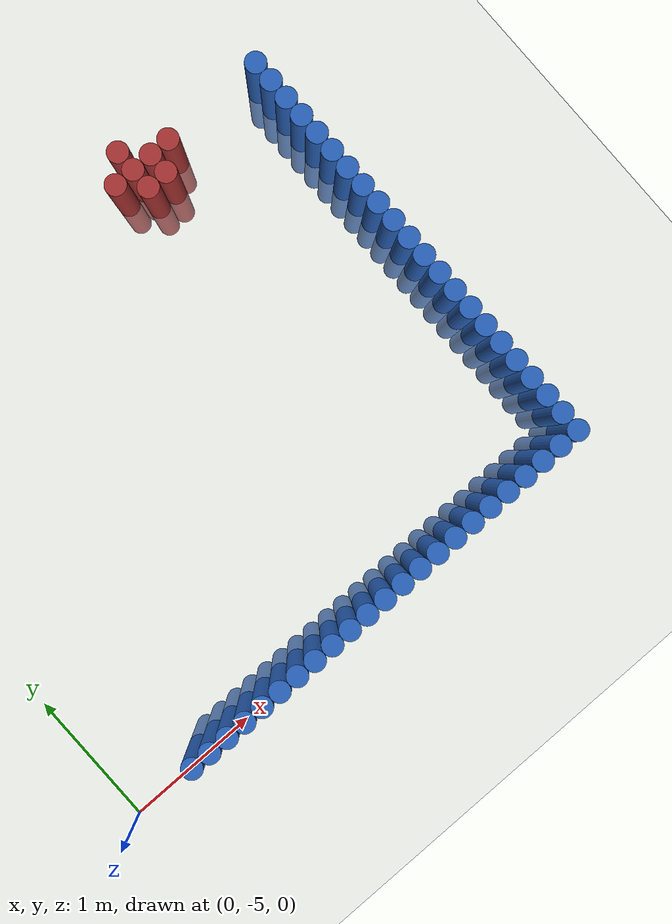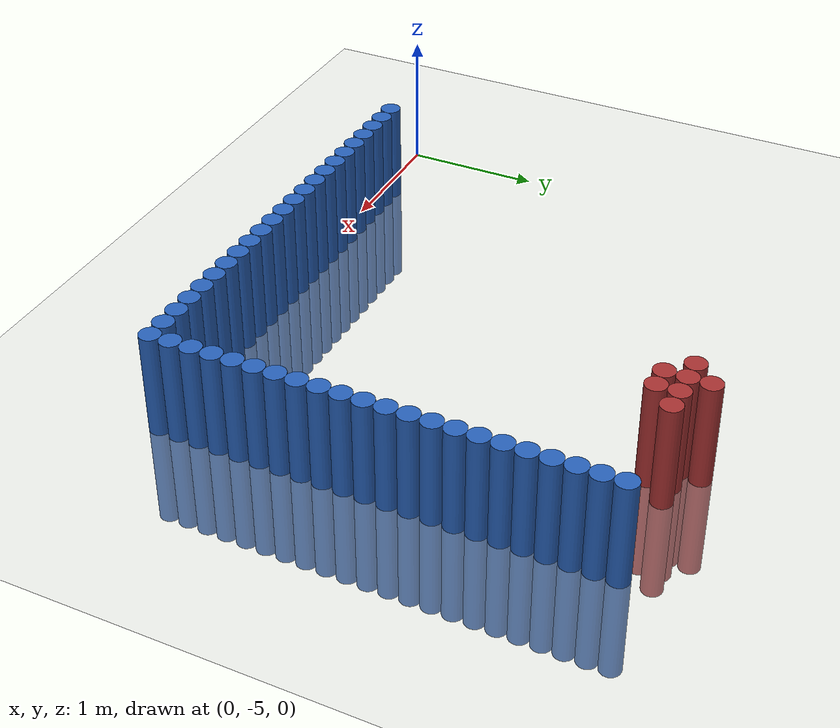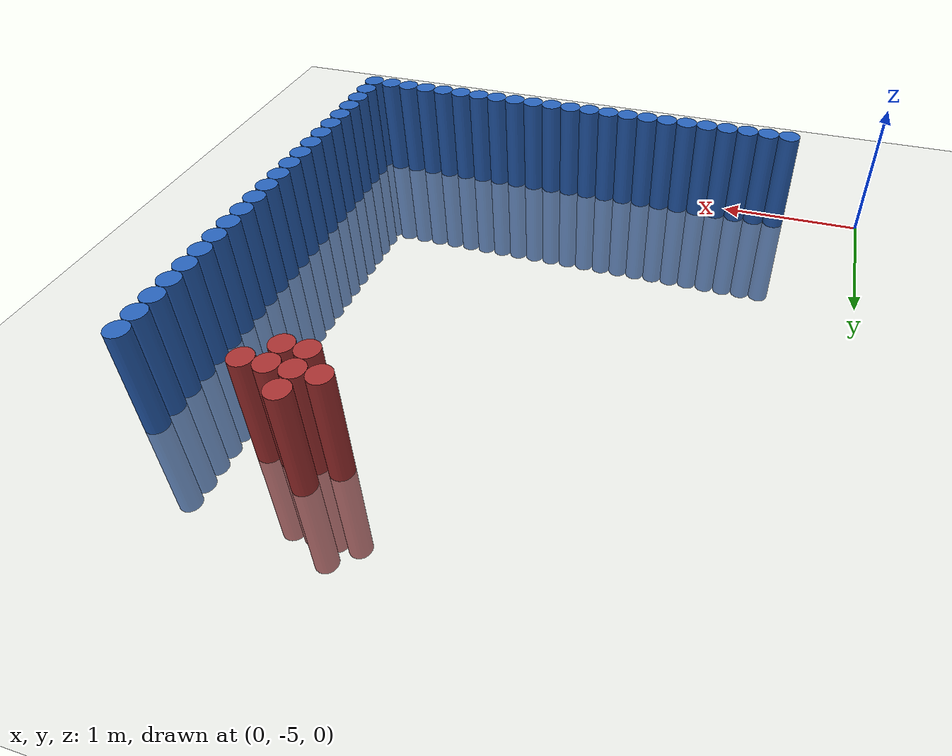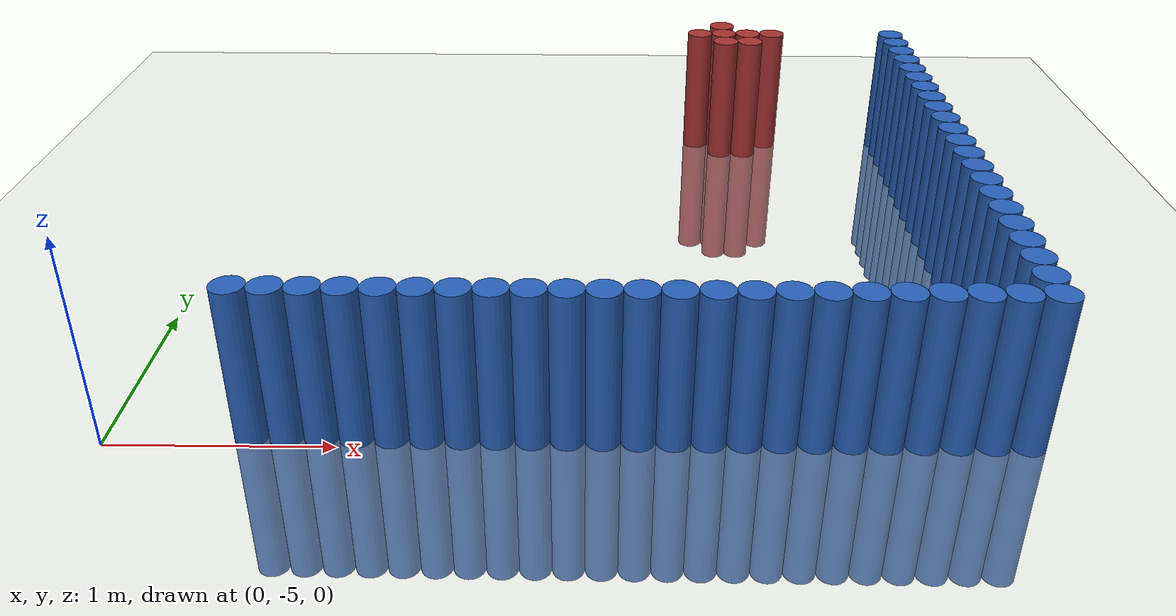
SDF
<sdf version="1.6">
 <world name="default">
  <model name="ground_plane">
   <static>1</static>
   <link name="link">
    <collision name="collision">
     <geometry><plane><normal>0 0 1</normal><size>100 100</size></plane></geometry>
     <surface><friction><ode><mu>100</mu><mu2>50</mu2></ode></friction></surface>
    </collision>
    <visual name="visual">
     <cast_shadows>0</cast_shadows>
     <geometry><plane><normal>0 0 1</normal><size>100 100</size></plane></geometry>
     <material>
      <script><uri>file://media/materials/scripts/gazebo.material</uri><name>Gazebo/Grey</name></script>
     </material>
    </visual>
   </link>
  </model>
  <model name="unit_cylinder_0">
   <static>1</static>
   <pose>3.925000 -4.925000 0.000000 0.000000 0.000000 0.000000</pose>
   <link name="link">
    <inertial>
     <mass>1</mass>
     <inertia><ixx>0.145833</ixx><ixy>0</ixy><ixz>0</ixz><iyy>0.145833</iyy><iyz>0</iyz><izz>0.125</izz></inertia>
    </inertial>
    <collision name="collision">
     <geometry><cylinder><radius>0.075000</radius><length>1.5</length></cylinder></geometry>
    </collision>
    <visual name="visual">
     <geometry><cylinder><radius>0.075000</radius><length>1.5</length></cylinder></geometry>
     <material>
      <ambient>0.152000 0.379000 0.720000 1</ambient>
      <diffuse>0.152000 0.379000 0.720000 1</diffuse>
     </material>
     <material>
      <script><name>Gazebo/Grey</name><uri>file://media/materials/scripts/gazebo.material</uri></script>
     </material>
    </visual>
   </link>
  </model>
  <model name="unit_cylinder_1">
   <static>1</static>
   <pose>3.775000 -4.925000 0.000000 0.000000 0.000000 0.000000</pose>
   <link name="link">
    <inertial>
     <mass>1</mass>
     <inertia><ixx>0.145833</ixx><ixy>0</ixy><ixz>0</ixz><iyy>0.145833</iyy><iyz>0</iyz><izz>0.125</izz></inertia>
    </inertial>
    <collision name="collision">
     <geometry><cylinder><radius>0.075000</radius><length>1.5</length></cylinder></geometry>
    </collision>
    <visual name="visual">
     <geometry><cylinder><radius>0.075000</radius><length>1.5</length></cylinder></geometry>
     <material>
      <ambient>0.152000 0.379000 0.720000 1</ambient>
      <diffuse>0.152000 0.379000 0.720000 1</diffuse>
     </material>
     <material>
      <script><name>Gazebo/Grey</name><uri>file://media/materials/scripts/gazebo.material</uri></script>
     </material>
    </visual>
   </link>
  </model>
  <model name="unit_cylinder_2">
   <static>1</static>
   <pose>3.625000 -4.925000 0.000000 0.000000 0.000000 0.000000</pose>
   <link name="link">
    <inertial>
     <mass>1</mass>
     <inertia><ixx>0.145833</ixx><ixy>0</ixy><ixz>0</ixz><iyy>0.145833</iyy><iyz>0</iyz><izz>0.125</izz></inertia>
    </inertial>
    <collision name="collision">
     <geometry><cylinder><radius>0.075000</radius><length>1.5</length></cylinder></geometry>
    </collision>
    <visual name="visual">
     <geometry><cylinder><radius>0.075000</radius><length>1.5</length></cylinder></geometry>
     <material>
      <ambient>0.152000 0.379000 0.720000 1</ambient>
      <diffuse>0.152000 0.379000 0.720000 1</diffuse>
     </material>
     <material>
      <script><name>Gazebo/Grey</name><uri>file://media/materials/scripts/gazebo.material</uri></script>
     </material>
    </visual>
   </link>
  </model>
  <model name="unit_cylinder_3">
   <static>1</static>
   <pose>3.475000 -4.925000 0.000000 0.000000 0.000000 0.000000</pose>
   <link name="link">
    <inertial>
     <mass>1</mass>
     <inertia><ixx>0.145833</ixx><ixy>0</ixy><ixz>0</ixz><iyy>0.145833</iyy><iyz>0</iyz><izz>0.125</izz></inertia>
    </inertial>
    <collision name="collision">
     <geometry><cylinder><radius>0.075000</radius><length>1.5</length></cylinder></geometry>
    </collision>
    <visual name="visual">
     <geometry><cylinder><radius>0.075000</radius><length>1.5</length></cylinder></geometry>
     <material>
      <ambient>0.152000 0.379000 0.720000 1</ambient>
      <diffuse>0.152000 0.379000 0.720000 1</diffuse>
     </material>
     <material>
      <script><name>Gazebo/Grey</name><uri>file://media/materials/scripts/gazebo.material</uri></script>
     </material>
    </visual>
   </link>
  </model>
  <model name="unit_cylinder_4">
   <static>1</static>
   <pose>3.325000 -4.925000 0.000000 0.000000 0.000000 0.000000</pose>
   <link name="link">
    <inertial>
     <mass>1</mass>
     <inertia><ixx>0.145833</ixx><ixy>0</ixy><ixz>0</ixz><iyy>0.145833</iyy><iyz>0</iyz><izz>0.125</izz></inertia>
    </inertial>
    <collision name="collision">
     <geometry><cylinder><radius>0.075000</radius><length>1.5</length></cylinder></geometry>
    </collision>
    <visual name="visual">
     <geometry><cylinder><radius>0.075000</radius><length>1.5</length></cylinder></geometry>
     <material>
      <ambient>0.152000 0.379000 0.720000 1</ambient>
      <diffuse>0.152000 0.379000 0.720000 1</diffuse>
     </material>
     <material>
      <script><name>Gazebo/Grey</name><uri>file://media/materials/scripts/gazebo.material</uri></script>
     </material>
    </visual>
   </link>
  </model>
  <model name="unit_cylinder_5">
   <static>1</static>
   <pose>3.175000 -4.925000 0.000000 0.000000 0.000000 0.000000</pose>
   <link name="link">
    <inertial>
     <mass>1</mass>
     <inertia><ixx>0.145833</ixx><ixy>0</ixy><ixz>0</ixz><iyy>0.145833</iyy><iyz>0</iyz><izz>0.125</izz></inertia>
    </inertial>
    <collision name="collision">
     <geometry><cylinder><radius>0.075000</radius><length>1.5</length></cylinder></geometry>
    </collision>
    <visual name="visual">
     <geometry><cylinder><radius>0.075000</radius><length>1.5</length></cylinder></geometry>
     <material>
      <ambient>0.152000 0.379000 0.720000 1</ambient>
      <diffuse>0.152000 0.379000 0.720000 1</diffuse>
     </material>
     <material>
      <script><name>Gazebo/Grey</name><uri>file://media/materials/scripts/gazebo.material</uri></script>
     </material>
    </visual>
   </link>
  </model>
  <model name="unit_cylinder_6">
   <static>1</static>
   <pose>3.025000 -4.925000 0.000000 0.000000 0.000000 0.000000</pose>
   <link name="link">
    <inertial>
     <mass>1</mass>
     <inertia><ixx>0.145833</ixx><ixy>0</ixy><ixz>0</ixz><iyy>0.145833</iyy><iyz>0</iyz><izz>0.125</izz></inertia>
    </inertial>
    <collision name="collision">
     <geometry><cylinder><radius>0.075000</radius><length>1.5</length></cylinder></geometry>
    </collision>
    <visual name="visual">
     <geometry><cylinder><radius>0.075000</radius><length>1.5</length></cylinder></geometry>
     <material>
      <ambient>0.152000 0.379000 0.720000 1</ambient>
      <diffuse>0.152000 0.379000 0.720000 1</diffuse>
     </material>
     <material>
      <script><name>Gazebo/Grey</name><uri>file://media/materials/scripts/gazebo.material</uri></script>
     </material>
    </visual>
   </link>
  </model>
  <model name="unit_cylinder_7">
   <static>1</static>
   <pose>2.875000 -4.925000 0.000000 0.000000 0.000000 0.000000</pose>
   <link name="link">
    <inertial>
     <mass>1</mass>
     <inertia><ixx>0.145833</ixx><ixy>0</ixy><ixz>0</ixz><iyy>0.145833</iyy><iyz>0</iyz><izz>0.125</izz></inertia>
    </inertial>
    <collision name="collision">
     <geometry><cylinder><radius>0.075000</radius><length>1.5</length></cylinder></geometry>
    </collision>
    <visual name="visual">
     <geometry><cylinder><radius>0.075000</radius><length>1.5</length></cylinder></geometry>
     <material>
      <ambient>0.152000 0.379000 0.720000 1</ambient>
      <diffuse>0.152000 0.379000 0.720000 1</diffuse>
     </material>
     <material>
      <script><name>Gazebo/Grey</name><uri>file://media/materials/scripts/gazebo.material</uri></script>
     </material>
    </visual>
   </link>
  </model>
  <model name="unit_cylinder_8">
   <static>1</static>
   <pose>2.725000 -4.925000 0.000000 0.000000 0.000000 0.000000</pose>
   <link name="link">
    <inertial>
     <mass>1</mass>
     <inertia><ixx>0.145833</ixx><ixy>0</ixy><ixz>0</ixz><iyy>0.145833</iyy><iyz>0</iyz><izz>0.125</izz></inertia>
    </inertial>
    <collision name="collision">
     <geometry><cylinder><radius>0.075000</radius><length>1.5</length></cylinder></geometry>
    </collision>
    <visual name="visual">
     <geometry><cylinder><radius>0.075000</radius><length>1.5</length></cylinder></geometry>
     <material>
      <ambient>0.152000 0.379000 0.720000 1</ambient>
      <diffuse>0.152000 0.379000 0.720000 1</diffuse>
     </material>
     <material>
      <script><name>Gazebo/Grey</name><uri>file://media/materials/scripts/gazebo.material</uri></script>
     </material>
    </visual>
   </link>
  </model>
  <model name="unit_cylinder_9">
   <static>1</static>
   <pose>2.575000 -4.925000 0.000000 0.000000 0.000000 0.000000</pose>
   <link name="link">
    <inertial>
     <mass>1</mass>
     <inertia><ixx>0.145833</ixx><ixy>0</ixy><ixz>0</ixz><iyy>0.145833</iyy><iyz>0</iyz><izz>0.125</izz></inertia>
    </inertial>
    <collision name="collision">
     <geometry><cylinder><radius>0.075000</radius><length>1.5</length></cylinder></geometry>
    </collision>
    <visual name="visual">
     <geometry><cylinder><radius>0.075000</radius><length>1.5</length></cylinder></geometry>
     <material>
      <ambient>0.152000 0.379000 0.720000 1</ambient>
      <diffuse>0.152000 0.379000 0.720000 1</diffuse>
     </material>
     <material>
      <script><name>Gazebo/Grey</name><uri>file://media/materials/scripts/gazebo.material</uri></script>
     </material>
    </visual>
   </link>
  </model>
  <model name="unit_cylinder_10">
   <static>1</static>
   <pose>2.425000 -4.925000 0.000000 0.000000 0.000000 0.000000</pose>
   <link name="link">
    <inertial>
     <mass>1</mass>
     <inertia><ixx>0.145833</ixx><ixy>0</ixy><ixz>0</ixz><iyy>0.145833</iyy><iyz>0</iyz><izz>0.125</izz></inertia>
    </inertial>
    <collision name="collision">
     <geometry><cylinder><radius>0.075000</radius><length>1.5</length></cylinder></geometry>
    </collision>
    <visual name="visual">
     <geometry><cylinder><radius>0.075000</radius><length>1.5</length></cylinder></geometry>
     <material>
      <ambient>0.152000 0.379000 0.720000 1</ambient>
      <diffuse>0.152000 0.379000 0.720000 1</diffuse>
     </material>
     <material>
      <script><name>Gazebo/Grey</name><uri>file://media/materials/scripts/gazebo.material</uri></script>
     </material>
    </visual>
   </link>
  </model>
  <model name="unit_cylinder_11">
   <static>1</static>
   <pose>2.275000 -4.925000 0.000000 0.000000 0.000000 0.000000</pose>
   <link name="link">
    <inertial>
     <mass>1</mass>
     <inertia><ixx>0.145833</ixx><ixy>0</ixy><ixz>0</ixz><iyy>0.145833</iyy><iyz>0</iyz><izz>0.125</izz></inertia>
    </inertial>
    <collision name="collision">
     <geometry><cylinder><radius>0.075000</radius><length>1.5</length></cylinder></geometry>
    </collision>
    <visual name="visual">
     <geometry><cylinder><radius>0.075000</radius><length>1.5</length></cylinder></geometry>
     <material>
      <ambient>0.152000 0.379000 0.720000 1</ambient>
      <diffuse>0.152000 0.379000 0.720000 1</diffuse>
     </material>
     <material>
      <script><name>Gazebo/Grey</name><uri>file://media/materials/scripts/gazebo.material</uri></script>
     </material>
    </visual>
   </link>
  </model>
  <model name="unit_cylinder_12">
   <static>1</static>
   <pose>2.125000 -4.925000 0.000000 0.000000 0.000000 0.000000</pose>
   <link name="link">
    <inertial>
     <mass>1</mass>
     <inertia><ixx>0.145833</ixx><ixy>0</ixy><ixz>0</ixz><iyy>0.145833</iyy><iyz>0</iyz><izz>0.125</izz></inertia>
    </inertial>
    <collision name="collision">
     <geometry><cylinder><radius>0.075000</radius><length>1.5</length></cylinder></geometry>
    </collision>
    <visual name="visual">
     <geometry><cylinder><radius>0.075000</radius><length>1.5</length></cylinder></geometry>
     <material>
      <ambient>0.152000 0.379000 0.720000 1</ambient>
      <diffuse>0.152000 0.379000 0.720000 1</diffuse>
     </material>
     <material>
      <script><name>Gazebo/Grey</name><uri>file://media/materials/scripts/gazebo.material</uri></script>
     </material>
    </visual>
   </link>
  </model>
  <model name="unit_cylinder_13">
   <static>1</static>
   <pose>1.975000 -4.925000 0.000000 0.000000 0.000000 0.000000</pose>
   <link name="link">
    <inertial>
     <mass>1</mass>
     <inertia><ixx>0.145833</ixx><ixy>0</ixy><ixz>0</ixz><iyy>0.145833</iyy><iyz>0</iyz><izz>0.125</izz></inertia>
    </inertial>
    <collision name="collision">
     <geometry><cylinder><radius>0.075000</radius><length>1.5</length></cylinder></geometry>
    </collision>
    <visual name="visual">
     <geometry><cylinder><radius>0.075000</radius><length>1.5</length></cylinder></geometry>
     <material>
      <ambient>0.152000 0.379000 0.720000 1</ambient>
      <diffuse>0.152000 0.379000 0.720000 1</diffuse>
     </material>
     <material>
      <script><name>Gazebo/Grey</name><uri>file://media/materials/scripts/gazebo.material</uri></script>
     </material>
    </visual>
   </link>
  </model>
  <model name="unit_cylinder_14">
   <static>1</static>
   <pose>1.825000 -4.925000 0.000000 0.000000 0.000000 0.000000</pose>
   <link name="link">
    <inertial>
     <mass>1</mass>
     <inertia><ixx>0.145833</ixx><ixy>0</ixy><ixz>0</ixz><iyy>0.145833</iyy><iyz>0</iyz><izz>0.125</izz></inertia>
    </inertial>
    <collision name="collision">
     <geometry><cylinder><radius>0.075000</radius><length>1.5</length></cylinder></geometry>
    </collision>
    <visual name="visual">
     <geometry><cylinder><radius>0.075000</radius><length>1.5</length></cylinder></geometry>
     <material>
      <ambient>0.152000 0.379000 0.720000 1</ambient>
      <diffuse>0.152000 0.379000 0.720000 1</diffuse>
     </material>
     <material>
      <script><name>Gazebo/Grey</name><uri>file://media/materials/scripts/gazebo.material</uri></script>
     </material>
    </visual>
   </link>
  </model>
  <model name="unit_cylinder_15">
   <static>1</static>
   <pose>1.675000 -4.925000 0.000000 0.000000 0.000000 0.000000</pose>
   <link name="link">
    <inertial>
     <mass>1</mass>
     <inertia><ixx>0.145833</ixx><ixy>0</ixy><ixz>0</ixz><iyy>0.145833</iyy><iyz>0</iyz><izz>0.125</izz></inertia>
    </inertial>
    <collision name="collision">
     <geometry><cylinder><radius>0.075000</radius><length>1.5</length></cylinder></geometry>
    </collision>
    <visual name="visual">
     <geometry><cylinder><radius>0.075000</radius><length>1.5</length></cylinder></geometry>
     <material>
      <ambient>0.152000 0.379000 0.720000 1</ambient>
      <diffuse>0.152000 0.379000 0.720000 1</diffuse>
     </material>
     <material>
      <script><name>Gazebo/Grey</name><uri>file://media/materials/scripts/gazebo.material</uri></script>
     </material>
    </visual>
   </link>
  </model>
  <model name="unit_cylinder_16">
   <static>1</static>
   <pose>1.525000 -4.925000 0.000000 0.000000 0.000000 0.000000</pose>
   <link name="link">
    <inertial>
     <mass>1</mass>
     <inertia><ixx>0.145833</ixx><ixy>0</ixy><ixz>0</ixz><iyy>0.145833</iyy><iyz>0</iyz><izz>0.125</izz></inertia>
    </inertial>
    <collision name="collision">
     <geometry><cylinder><radius>0.075000</radius><length>1.5</length></cylinder></geometry>
    </collision>
    <visual name="visual">
     <geometry><cylinder><radius>0.075000</radius><length>1.5</length></cylinder></geometry>
     <material>
      <ambient>0.152000 0.379000 0.720000 1</ambient>
      <diffuse>0.152000 0.379000 0.720000 1</diffuse>
     </material>
     <material>
      <script><name>Gazebo/Grey</name><uri>file://media/materials/scripts/gazebo.material</uri></script>
     </material>
    </visual>
   </link>
  </model>
  <model name="unit_cylinder_17">
   <static>1</static>
   <pose>1.375000 -4.925000 0.000000 0.000000 0.000000 0.000000</pose>
   <link name="link">
    <inertial>
     <mass>1</mass>
     <inertia><ixx>0.145833</ixx><ixy>0</ixy><ixz>0</ixz><iyy>0.145833</iyy><iyz>0</iyz><izz>0.125</izz></inertia>
    </inertial>
    <collision name="collision">
     <geometry><cylinder><radius>0.075000</radius><length>1.5</length></cylinder></geometry>
    </collision>
    <visual name="visual">
     <geometry><cylinder><radius>0.075000</radius><length>1.5</length></cylinder></geometry>
     <material>
      <ambient>0.152000 0.379000 0.720000 1</ambient>
      <diffuse>0.152000 0.379000 0.720000 1</diffuse>
     </material>
     <material>
      <script><name>Gazebo/Grey</name><uri>file://media/materials/scripts/gazebo.material</uri></script>
     </material>
    </visual>
   </link>
  </model>
  <model name="unit_cylinder_18">
   <static>1</static>
   <pose>1.225000 -4.925000 0.000000 0.000000 0.000000 0.000000</pose>
   <link name="link">
    <inertial>
     <mass>1</mass>
     <inertia><ixx>0.145833</ixx><ixy>0</ixy><ixz>0</ixz><iyy>0.145833</iyy><iyz>0</iyz><izz>0.125</izz></inertia>
    </inertial>
    <collision name="collision">
     <geometry><cylinder><radius>0.075000</radius><length>1.5</length></cylinder></geometry>
    </collision>
    <visual name="visual">
     <geometry><cylinder><radius>0.075000</radius><length>1.5</length></cylinder></geometry>
     <material>
      <ambient>0.152000 0.379000 0.720000 1</ambient>
      <diffuse>0.152000 0.379000 0.720000 1</diffuse>
     </material>
     <material>
      <script><name>Gazebo/Grey</name><uri>file://media/materials/scripts/gazebo.material</uri></script>
     </material>
    </visual>
   </link>
  </model>
  <model name="unit_cylinder_19">
   <static>1</static>
   <pose>1.075000 -4.925000 0.000000 0.000000 0.000000 0.000000</pose>
   <link name="link">
    <inertial>
     <mass>1</mass>
     <inertia><ixx>0.145833</ixx><ixy>0</ixy><ixz>0</ixz><iyy>0.145833</iyy><iyz>0</iyz><izz>0.125</izz></inertia>
    </inertial>
    <collision name="collision">
     <geometry><cylinder><radius>0.075000</radius><length>1.5</length></cylinder></geometry>
    </collision>
    <visual name="visual">
     <geometry><cylinder><radius>0.075000</radius><length>1.5</length></cylinder></geometry>
     <material>
      <ambient>0.152000 0.379000 0.720000 1</ambient>
      <diffuse>0.152000 0.379000 0.720000 1</diffuse>
     </material>
     <material>
      <script><name>Gazebo/Grey</name><uri>file://media/materials/scripts/gazebo.material</uri></script>
     </material>
    </visual>
   </link>
  </model>
  <model name="unit_cylinder_20">
   <static>1</static>
   <pose>0.925000 -4.925000 0.000000 0.000000 0.000000 0.000000</pose>
   <link name="link">
    <inertial>
     <mass>1</mass>
     <inertia><ixx>0.145833</ixx><ixy>0</ixy><ixz>0</ixz><iyy>0.145833</iyy><iyz>0</iyz><izz>0.125</izz></inertia>
    </inertial>
    <collision name="collision">
     <geometry><cylinder><radius>0.075000</radius><length>1.5</length></cylinder></geometry>
    </collision>
    <visual name="visual">
     <geometry><cylinder><radius>0.075000</radius><length>1.5</length></cylinder></geometry>
     <material>
      <ambient>0.152000 0.379000 0.720000 1</ambient>
      <diffuse>0.152000 0.379000 0.720000 1</diffuse>
     </material>
     <material>
      <script><name>Gazebo/Grey</name><uri>file://media/materials/scripts/gazebo.material</uri></script>
     </material>
    </visual>
   </link>
  </model>
  <model name="unit_cylinder_21">
   <static>1</static>
   <pose>0.775000 -4.925000 0.000000 0.000000 0.000000 0.000000</pose>
   <link name="link">
    <inertial>
     <mass>1</mass>
     <inertia><ixx>0.145833</ixx><ixy>0</ixy><ixz>0</ixz><iyy>0.145833</iyy><iyz>0</iyz><izz>0.125</izz></inertia>
    </inertial>
    <collision name="collision">
     <geometry><cylinder><radius>0.075000</radius><length>1.5</length></cylinder></geometry>
    </collision>
    <visual name="visual">
     <geometry><cylinder><radius>0.075000</radius><length>1.5</length></cylinder></geometry>
     <material>
      <ambient>0.152000 0.379000 0.720000 1</ambient>
      <diffuse>0.152000 0.379000 0.720000 1</diffuse>
     </material>
     <material>
      <script><name>Gazebo/Grey</name><uri>file://media/materials/scripts/gazebo.material</uri></script>
     </material>
    </visual>
   </link>
  </model>
  <model name="unit_cylinder_22">
   <static>1</static>
   <pose>0.625000 -4.925000 0.000000 0.000000 0.000000 0.000000</pose>
   <link name="link">
    <inertial>
     <mass>1</mass>
     <inertia><ixx>0.145833</ixx><ixy>0</ixy><ixz>0</ixz><iyy>0.145833</iyy><iyz>0</iyz><izz>0.125</izz></inertia>
    </inertial>
    <collision name="collision">
     <geometry><cylinder><radius>0.075000</radius><length>1.5</length></cylinder></geometry>
    </collision>
    <visual name="visual">
     <geometry><cylinder><radius>0.075000</radius><length>1.5</length></cylinder></geometry>
     <material>
      <ambient>0.152000 0.379000 0.720000 1</ambient>
      <diffuse>0.152000 0.379000 0.720000 1</diffuse>
     </material>
     <material>
      <script><name>Gazebo/Grey</name><uri>file://media/materials/scripts/gazebo.material</uri></script>
     </material>
    </visual>
   </link>
  </model>
  <model name="unit_cylinder_50">
   <static>1</static>
   <pose>3.925000 -4.775000 0.000000 0.000000 0.000000 0.000000</pose>
   <link name="link">
    <inertial>
     <mass>1</mass>
     <inertia><ixx>0.145833</ixx><ixy>0</ixy><ixz>0</ixz><iyy>0.145833</iyy><iyz>0</iyz><izz>0.125</izz></inertia>
    </inertial>
    <collision name="collision">
     <geometry><cylinder><radius>0.075000</radius><length>1.5</length></cylinder></geometry>
    </collision>
    <visual name="visual">
     <geometry><cylinder><radius>0.075000</radius><length>1.5</length></cylinder></geometry>
     <material>
      <ambient>0.152000 0.379000 0.720000 1</ambient>
      <diffuse>0.152000 0.379000 0.720000 1</diffuse>
     </material>
     <material>
      <script><name>Gazebo/Grey</name><uri>file://media/materials/scripts/gazebo.material</uri></script>
     </material>
    </visual>
   </link>
  </model>
  <model name="unit_cylinder_52">
   <static>1</static>
   <pose>3.925000 -4.625000 0.000000 0.000000 0.000000 0.000000</pose>
   <link name="link">
    <inertial>
     <mass>1</mass>
     <inertia><ixx>0.145833</ixx><ixy>0</ixy><ixz>0</ixz><iyy>0.145833</iyy><iyz>0</iyz><izz>0.125</izz></inertia>
    </inertial>
    <collision name="collision">
     <geometry><cylinder><radius>0.075000</radius><length>1.5</length></cylinder></geometry>
    </collision>
    <visual name="visual">
     <geometry><cylinder><radius>0.075000</radius><length>1.5</length></cylinder></geometry>
     <material>
      <ambient>0.152000 0.379000 0.720000 1</ambient>
      <diffuse>0.152000 0.379000 0.720000 1</diffuse>
     </material>
     <material>
      <script><name>Gazebo/Grey</name><uri>file://media/materials/scripts/gazebo.material</uri></script>
     </material>
    </visual>
   </link>
  </model>
  <model name="unit_cylinder_54">
   <static>1</static>
   <pose>3.925000 -4.475000 0.000000 0.000000 0.000000 0.000000</pose>
   <link name="link">
    <inertial>
     <mass>1</mass>
     <inertia><ixx>0.145833</ixx><ixy>0</ixy><ixz>0</ixz><iyy>0.145833</iyy><iyz>0</iyz><izz>0.125</izz></inertia>
    </inertial>
    <collision name="collision">
     <geometry><cylinder><radius>0.075000</radius><length>1.5</length></cylinder></geometry>
    </collision>
    <visual name="visual">
     <geometry><cylinder><radius>0.075000</radius><length>1.5</length></cylinder></geometry>
     <material>
      <ambient>0.152000 0.379000 0.720000 1</ambient>
      <diffuse>0.152000 0.379000 0.720000 1</diffuse>
     </material>
     <material>
      <script><name>Gazebo/Grey</name><uri>file://media/materials/scripts/gazebo.material</uri></script>
     </material>
    </visual>
   </link>
  </model>
  <model name="unit_cylinder_56">
   <static>1</static>
   <pose>3.925000 -4.325000 0.000000 0.000000 0.000000 0.000000</pose>
   <link name="link">
    <inertial>
     <mass>1</mass>
     <inertia><ixx>0.145833</ixx><ixy>0</ixy><ixz>0</ixz><iyy>0.145833</iyy><iyz>0</iyz><izz>0.125</izz></inertia>
    </inertial>
    <collision name="collision">
     <geometry><cylinder><radius>0.075000</radius><length>1.5</length></cylinder></geometry>
    </collision>
    <visual name="visual">
     <geometry><cylinder><radius>0.075000</radius><length>1.5</length></cylinder></geometry>
     <material>
      <ambient>0.152000 0.379000 0.720000 1</ambient>
      <diffuse>0.152000 0.379000 0.720000 1</diffuse>
     </material>
     <material>
      <script><name>Gazebo/Grey</name><uri>file://media/materials/scripts/gazebo.material</uri></script>
     </material>
    </visual>
   </link>
  </model>
  <model name="unit_cylinder_58">
   <static>1</static>
   <pose>3.925000 -4.175000 0.000000 0.000000 0.000000 0.000000</pose>
   <link name="link">
    <inertial>
     <mass>1</mass>
     <inertia><ixx>0.145833</ixx><ixy>0</ixy><ixz>0</ixz><iyy>0.145833</iyy><iyz>0</iyz><izz>0.125</izz></inertia>
    </inertial>
    <collision name="collision">
     <geometry><cylinder><radius>0.075000</radius><length>1.5</length></cylinder></geometry>
    </collision>
    <visual name="visual">
     <geometry><cylinder><radius>0.075000</radius><length>1.5</length></cylinder></geometry>
     <material>
      <ambient>0.152000 0.379000 0.720000 1</ambient>
      <diffuse>0.152000 0.379000 0.720000 1</diffuse>
     </material>
     <material>
      <script><name>Gazebo/Grey</name><uri>file://media/materials/scripts/gazebo.material</uri></script>
     </material>
    </visual>
   </link>
  </model>
  <model name="unit_cylinder_60">
   <static>1</static>
   <pose>3.925000 -4.025000 0.000000 0.000000 0.000000 0.000000</pose>
   <link name="link">
    <inertial>
     <mass>1</mass>
     <inertia><ixx>0.145833</ixx><ixy>0</ixy><ixz>0</ixz><iyy>0.145833</iyy><iyz>0</iyz><izz>0.125</izz></inertia>
    </inertial>
    <collision name="collision">
     <geometry><cylinder><radius>0.075000</radius><length>1.5</length></cylinder></geometry>
    </collision>
    <visual name="visual">
     <geometry><cylinder><radius>0.075000</radius><length>1.5</length></cylinder></geometry>
     <material>
      <ambient>0.152000 0.379000 0.720000 1</ambient>
      <diffuse>0.152000 0.379000 0.720000 1</diffuse>
     </material>
     <material>
      <script><name>Gazebo/Grey</name><uri>file://media/materials/scripts/gazebo.material</uri></script>
     </material>
    </visual>
   </link>
  </model>
  <model name="unit_cylinder_62">
   <static>1</static>
   <pose>3.925000 -3.875000 0.000000 0.000000 0.000000 0.000000</pose>
   <link name="link">
    <inertial>
     <mass>1</mass>
     <inertia><ixx>0.145833</ixx><ixy>0</ixy><ixz>0</ixz><iyy>0.145833</iyy><iyz>0</iyz><izz>0.125</izz></inertia>
    </inertial>
    <collision name="collision">
     <geometry><cylinder><radius>0.075000</radius><length>1.5</length></cylinder></geometry>
    </collision>
    <visual name="visual">
     <geometry><cylinder><radius>0.075000</radius><length>1.5</length></cylinder></geometry>
     <material>
      <ambient>0.152000 0.379000 0.720000 1</ambient>
      <diffuse>0.152000 0.379000 0.720000 1</diffuse>
     </material>
     <material>
      <script><name>Gazebo/Grey</name><uri>file://media/materials/scripts/gazebo.material</uri></script>
     </material>
    </visual>
   </link>
  </model>
  <model name="unit_cylinder_64">
   <static>1</static>
   <pose>3.925000 -3.725000 0.000000 0.000000 0.000000 0.000000</pose>
   <link name="link">
    <inertial>
     <mass>1</mass>
     <inertia><ixx>0.145833</ixx><ixy>0</ixy><ixz>0</ixz><iyy>0.145833</iyy><iyz>0</iyz><izz>0.125</izz></inertia>
    </inertial>
    <collision name="collision">
     <geometry><cylinder><radius>0.075000</radius><length>1.5</length></cylinder></geometry>
    </collision>
    <visual name="visual">
     <geometry><cylinder><radius>0.075000</radius><length>1.5</length></cylinder></geometry>
     <material>
      <ambient>0.152000 0.379000 0.720000 1</ambient>
      <diffuse>0.152000 0.379000 0.720000 1</diffuse>
     </material>
     <material>
      <script><name>Gazebo/Grey</name><uri>file://media/materials/scripts/gazebo.material</uri></script>
     </material>
    </visual>
   </link>
  </model>
  <model name="unit_cylinder_66">
   <static>1</static>
   <pose>3.925000 -3.575000 0.000000 0.000000 0.000000 0.000000</pose>
   <link name="link">
    <inertial>
     <mass>1</mass>
     <inertia><ixx>0.145833</ixx><ixy>0</ixy><ixz>0</ixz><iyy>0.145833</iyy><iyz>0</iyz><izz>0.125</izz></inertia>
    </inertial>
    <collision name="collision">
     <geometry><cylinder><radius>0.075000</radius><length>1.5</length></cylinder></geometry>
    </collision>
    <visual name="visual">
     <geometry><cylinder><radius>0.075000</radius><length>1.5</length></cylinder></geometry>
     <material>
      <ambient>0.152000 0.379000 0.720000 1</ambient>
      <diffuse>0.152000 0.379000 0.720000 1</diffuse>
     </material>
     <material>
      <script><name>Gazebo/Grey</name><uri>file://media/materials/scripts/gazebo.material</uri></script>
     </material>
    </visual>
   </link>
  </model>
  <model name="unit_cylinder_68">
   <static>1</static>
   <pose>3.925000 -3.425000 0.000000 0.000000 0.000000 0.000000</pose>
   <link name="link">
    <inertial>
     <mass>1</mass>
     <inertia><ixx>0.145833</ixx><ixy>0</ixy><ixz>0</ixz><iyy>0.145833</iyy><iyz>0</iyz><izz>0.125</izz></inertia>
    </inertial>
    <collision name="collision">
     <geometry><cylinder><radius>0.075000</radius><length>1.5</length></cylinder></geometry>
    </collision>
    <visual name="visual">
     <geometry><cylinder><radius>0.075000</radius><length>1.5</length></cylinder></geometry>
     <material>
      <ambient>0.152000 0.379000 0.720000 1</ambient>
      <diffuse>0.152000 0.379000 0.720000 1</diffuse>
     </material>
     <material>
      <script><name>Gazebo/Grey</name><uri>file://media/materials/scripts/gazebo.material</uri></script>
     </material>
    </visual>
   </link>
  </model>
  <model name="unit_cylinder_70">
   <static>1</static>
   <pose>3.925000 -3.275000 0.000000 0.000000 0.000000 0.000000</pose>
   <link name="link">
    <inertial>
     <mass>1</mass>
     <inertia><ixx>0.145833</ixx><ixy>0</ixy><ixz>0</ixz><iyy>0.145833</iyy><iyz>0</iyz><izz>0.125</izz></inertia>
    </inertial>
    <collision name="collision">
     <geometry><cylinder><radius>0.075000</radius><length>1.5</length></cylinder></geometry>
    </collision>
    <visual name="visual">
     <geometry><cylinder><radius>0.075000</radius><length>1.5</length></cylinder></geometry>
     <material>
      <ambient>0.152000 0.379000 0.720000 1</ambient>
      <diffuse>0.152000 0.379000 0.720000 1</diffuse>
     </material>
     <material>
      <script><name>Gazebo/Grey</name><uri>file://media/materials/scripts/gazebo.material</uri></script>
     </material>
    </visual>
   </link>
  </model>
  <model name="unit_cylinder_72">
   <static>1</static>
   <pose>3.925000 -3.125000 0.000000 0.000000 0.000000 0.000000</pose>
   <link name="link">
    <inertial>
     <mass>1</mass>
     <inertia><ixx>0.145833</ixx><ixy>0</ixy><ixz>0</ixz><iyy>0.145833</iyy><iyz>0</iyz><izz>0.125</izz></inertia>
    </inertial>
    <collision name="collision">
     <geometry><cylinder><radius>0.075000</radius><length>1.5</length></cylinder></geometry>
    </collision>
    <visual name="visual">
     <geometry><cylinder><radius>0.075000</radius><length>1.5</length></cylinder></geometry>
     <material>
      <ambient>0.152000 0.379000 0.720000 1</ambient>
      <diffuse>0.152000 0.379000 0.720000 1</diffuse>
     </material>
     <material>
      <script><name>Gazebo/Grey</name><uri>file://media/materials/scripts/gazebo.material</uri></script>
     </material>
    </visual>
   </link>
  </model>
  <model name="unit_cylinder_74">
   <static>1</static>
   <pose>3.925000 -2.975000 0.000000 0.000000 0.000000 0.000000</pose>
   <link name="link">
    <inertial>
     <mass>1</mass>
     <inertia><ixx>0.145833</ixx><ixy>0</ixy><ixz>0</ixz><iyy>0.145833</iyy><iyz>0</iyz><izz>0.125</izz></inertia>
    </inertial>
    <collision name="collision">
     <geometry><cylinder><radius>0.075000</radius><length>1.5</length></cylinder></geometry>
    </collision>
    <visual name="visual">
     <geometry><cylinder><radius>0.075000</radius><length>1.5</length></cylinder></geometry>
     <material>
      <ambient>0.152000 0.379000 0.720000 1</ambient>
      <diffuse>0.152000 0.379000 0.720000 1</diffuse>
     </material>
     <material>
      <script><name>Gazebo/Grey</name><uri>file://media/materials/scripts/gazebo.material</uri></script>
     </material>
    </visual>
   </link>
  </model>
  <model name="unit_cylinder_76">
   <static>1</static>
   <pose>3.925000 -2.825000 0.000000 0.000000 0.000000 0.000000</pose>
   <link name="link">
    <inertial>
     <mass>1</mass>
     <inertia><ixx>0.145833</ixx><ixy>0</ixy><ixz>0</ixz><iyy>0.145833</iyy><iyz>0</iyz><izz>0.125</izz></inertia>
    </inertial>
    <collision name="collision">
     <geometry><cylinder><radius>0.075000</radius><length>1.5</length></cylinder></geometry>
    </collision>
    <visual name="visual">
     <geometry><cylinder><radius>0.075000</radius><length>1.5</length></cylinder></geometry>
     <material>
      <ambient>0.152000 0.379000 0.720000 1</ambient>
      <diffuse>0.152000 0.379000 0.720000 1</diffuse>
     </material>
     <material>
      <script><name>Gazebo/Grey</name><uri>file://media/materials/scripts/gazebo.material</uri></script>
     </material>
    </visual>
   </link>
  </model>
  <model name="unit_cylinder_78">
   <static>1</static>
   <pose>3.925000 -2.675000 0.000000 0.000000 0.000000 0.000000</pose>
   <link name="link">
    <inertial>
     <mass>1</mass>
     <inertia><ixx>0.145833</ixx><ixy>0</ixy><ixz>0</ixz><iyy>0.145833</iyy><iyz>0</iyz><izz>0.125</izz></inertia>
    </inertial>
    <collision name="collision">
     <geometry><cylinder><radius>0.075000</radius><length>1.5</length></cylinder></geometry>
    </collision>
    <visual name="visual">
     <geometry><cylinder><radius>0.075000</radius><length>1.5</length></cylinder></geometry>
     <material>
      <ambient>0.152000 0.379000 0.720000 1</ambient>
      <diffuse>0.152000 0.379000 0.720000 1</diffuse>
     </material>
     <material>
      <script><name>Gazebo/Grey</name><uri>file://media/materials/scripts/gazebo.material</uri></script>
     </material>
    </visual>
   </link>
  </model>
  <model name="unit_cylinder_80">
   <static>1</static>
   <pose>3.925000 -2.525000 0.000000 0.000000 0.000000 0.000000</pose>
   <link name="link">
    <inertial>
     <mass>1</mass>
     <inertia><ixx>0.145833</ixx><ixy>0</ixy><ixz>0</ixz><iyy>0.145833</iyy><iyz>0</iyz><izz>0.125</izz></inertia>
    </inertial>
    <collision name="collision">
     <geometry><cylinder><radius>0.075000</radius><length>1.5</length></cylinder></geometry>
    </collision>
    <visual name="visual">
     <geometry><cylinder><radius>0.075000</radius><length>1.5</length></cylinder></geometry>
     <material>
      <ambient>0.152000 0.379000 0.720000 1</ambient>
      <diffuse>0.152000 0.379000 0.720000 1</diffuse>
     </material>
     <material>
      <script><name>Gazebo/Grey</name><uri>file://media/materials/scripts/gazebo.material</uri></script>
     </material>
    </visual>
   </link>
  </model>
  <model name="unit_cylinder_82">
   <static>1</static>
   <pose>3.925000 -2.375000 0.000000 0.000000 0.000000 0.000000</pose>
   <link name="link">
    <inertial>
     <mass>1</mass>
     <inertia><ixx>0.145833</ixx><ixy>0</ixy><ixz>0</ixz><iyy>0.145833</iyy><iyz>0</iyz><izz>0.125</izz></inertia>
    </inertial>
    <collision name="collision">
     <geometry><cylinder><radius>0.075000</radius><length>1.5</length></cylinder></geometry>
    </collision>
    <visual name="visual">
     <geometry><cylinder><radius>0.075000</radius><length>1.5</length></cylinder></geometry>
     <material>
      <ambient>0.152000 0.379000 0.720000 1</ambient>
      <diffuse>0.152000 0.379000 0.720000 1</diffuse>
     </material>
     <material>
      <script><name>Gazebo/Grey</name><uri>file://media/materials/scripts/gazebo.material</uri></script>
     </material>
    </visual>
   </link>
  </model>
  <model name="unit_cylinder_84">
   <static>1</static>
   <pose>3.925000 -2.225000 0.000000 0.000000 0.000000 0.000000</pose>
   <link name="link">
    <inertial>
     <mass>1</mass>
     <inertia><ixx>0.145833</ixx><ixy>0</ixy><ixz>0</ixz><iyy>0.145833</iyy><iyz>0</iyz><izz>0.125</izz></inertia>
    </inertial>
    <collision name="collision">
     <geometry><cylinder><radius>0.075000</radius><length>1.5</length></cylinder></geometry>
    </collision>
    <visual name="visual">
     <geometry><cylinder><radius>0.075000</radius><length>1.5</length></cylinder></geometry>
     <material>
      <ambient>0.152000 0.379000 0.720000 1</ambient>
      <diffuse>0.152000 0.379000 0.720000 1</diffuse>
     </material>
     <material>
      <script><name>Gazebo/Grey</name><uri>file://media/materials/scripts/gazebo.material</uri></script>
     </material>
    </visual>
   </link>
  </model>
  <model name="unit_cylinder_86">
   <static>1</static>
   <pose>3.925000 -2.075000 0.000000 0.000000 0.000000 0.000000</pose>
   <link name="link">
    <inertial>
     <mass>1</mass>
     <inertia><ixx>0.145833</ixx><ixy>0</ixy><ixz>0</ixz><iyy>0.145833</iyy><iyz>0</iyz><izz>0.125</izz></inertia>
    </inertial>
    <collision name="collision">
     <geometry><cylinder><radius>0.075000</radius><length>1.5</length></cylinder></geometry>
    </collision>
    <visual name="visual">
     <geometry><cylinder><radius>0.075000</radius><length>1.5</length></cylinder></geometry>
     <material>
      <ambient>0.152000 0.379000 0.720000 1</ambient>
      <diffuse>0.152000 0.379000 0.720000 1</diffuse>
     </material>
     <material>
      <script><name>Gazebo/Grey</name><uri>file://media/materials/scripts/gazebo.material</uri></script>
     </material>
    </visual>
   </link>
  </model>
  <model name="unit_cylinder_88">
   <static>1</static>
   <pose>3.925000 -1.925000 0.000000 0.000000 0.000000 0.000000</pose>
   <link name="link">
    <inertial>
     <mass>1</mass>
     <inertia><ixx>0.145833</ixx><ixy>0</ixy><ixz>0</ixz><iyy>0.145833</iyy><iyz>0</iyz><izz>0.125</izz></inertia>
    </inertial>
    <collision name="collision">
     <geometry><cylinder><radius>0.075000</radius><length>1.5</length></cylinder></geometry>
    </collision>
    <visual name="visual">
     <geometry><cylinder><radius>0.075000</radius><length>1.5</length></cylinder></geometry>
     <material>
      <ambient>0.152000 0.379000 0.720000 1</ambient>
      <diffuse>0.152000 0.379000 0.720000 1</diffuse>
     </material>
     <material>
      <script><name>Gazebo/Grey</name><uri>file://media/materials/scripts/gazebo.material</uri></script>
     </material>
    </visual>
   </link>
  </model>
  <model name="unit_cylinder_90">
   <static>1</static>
   <pose>3.925000 -1.775000 0.000000 0.000000 0.000000 0.000000</pose>
   <link name="link">
    <inertial>
     <mass>1</mass>
     <inertia><ixx>0.145833</ixx><ixy>0</ixy><ixz>0</ixz><iyy>0.145833</iyy><iyz>0</iyz><izz>0.125</izz></inertia>
    </inertial>
    <collision name="collision">
     <geometry><cylinder><radius>0.075000</radius><length>1.5</length></cylinder></geometry>
    </collision>
    <visual name="visual">
     <geometry><cylinder><radius>0.075000</radius><length>1.5</length></cylinder></geometry>
     <material>
      <ambient>0.152000 0.379000 0.720000 1</ambient>
      <diffuse>0.152000 0.379000 0.720000 1</diffuse>
     </material>
     <material>
      <script><name>Gazebo/Grey</name><uri>file://media/materials/scripts/gazebo.material</uri></script>
     </material>
    </visual>
   </link>
  </model>
  <model name="unit_cylinder_553">
   <static>1</static>
   <pose>2.725000 -1.775000 0.000000 0.000000 0.000000 0.000000</pose>
   <link name="link">
    <inertial>
     <mass>1</mass>
     <inertia><ixx>0.145833</ixx><ixy>0</ixy><ixz>0</ixz><iyy>0.145833</iyy><iyz>0</iyz><izz>0.125</izz></inertia>
    </inertial>
    <collision name="collision">
     <geometry><cylinder><radius>0.075000</radius><length>1.5</length></cylinder></geometry>
    </collision>
    <visual name="visual">
     <geometry><cylinder><radius>0.075000</radius><length>1.5</length></cylinder></geometry>
     <material>
      <ambient>0.648000 0.192000 0.192000 1</ambient>
      <diffuse>0.648000 0.192000 0.192000 1</diffuse>
     </material>
     <material>
      <script><name>Gazebo/Grey</name><uri>file://media/materials/scripts/gazebo.material</uri></script>
     </material>
    </visual>
   </link>
  </model>
  <model name="unit_cylinder_563">
   <static>1</static>
   <pose>2.875000 -1.925000 0.000000 0.000000 0.000000 0.000000</pose>
   <link name="link">
    <inertial>
     <mass>1</mass>
     <inertia><ixx>0.145833</ixx><ixy>0</ixy><ixz>0</ixz><iyy>0.145833</iyy><iyz>0</iyz><izz>0.125</izz></inertia>
    </inertial>
    <collision name="collision">
     <geometry><cylinder><radius>0.075000</radius><length>1.5</length></cylinder></geometry>
    </collision>
    <visual name="visual">
     <geometry><cylinder><radius>0.075000</radius><length>1.5</length></cylinder></geometry>
     <material>
      <ambient>0.648000 0.192000 0.192000 1</ambient>
      <diffuse>0.648000 0.192000 0.192000 1</diffuse>
     </material>
     <material>
      <script><name>Gazebo/Grey</name><uri>file://media/materials/scripts/gazebo.material</uri></script>
     </material>
    </visual>
   </link>
  </model>
  <model name="unit_cylinder_564">
   <static>1</static>
   <pose>2.875000 -1.775000 0.000000 0.000000 0.000000 0.000000</pose>
   <link name="link">
    <inertial>
     <mass>1</mass>
     <inertia><ixx>0.145833</ixx><ixy>0</ixy><ixz>0</ixz><iyy>0.145833</iyy><iyz>0</iyz><izz>0.125</izz></inertia>
    </inertial>
    <collision name="collision">
     <geometry><cylinder><radius>0.075000</radius><length>1.5</length></cylinder></geometry>
    </collision>
    <visual name="visual">
     <geometry><cylinder><radius>0.075000</radius><length>1.5</length></cylinder></geometry>
     <material>
      <ambient>0.648000 0.192000 0.192000 1</ambient>
      <diffuse>0.648000 0.192000 0.192000 1</diffuse>
     </material>
     <material>
      <script><name>Gazebo/Grey</name><uri>file://media/materials/scripts/gazebo.material</uri></script>
     </material>
    </visual>
   </link>
  </model>
  <model name="unit_cylinder_565">
   <static>1</static>
   <pose>2.875000 -1.625000 0.000000 0.000000 0.000000 0.000000</pose>
   <link name="link">
    <inertial>
     <mass>1</mass>
     <inertia><ixx>0.145833</ixx><ixy>0</ixy><ixz>0</ixz><iyy>0.145833</iyy><iyz>0</iyz><izz>0.125</izz></inertia>
    </inertial>
    <collision name="collision">
     <geometry><cylinder><radius>0.075000</radius><length>1.5</length></cylinder></geometry>
    </collision>
    <visual name="visual">
     <geometry><cylinder><radius>0.075000</radius><length>1.5</length></cylinder></geometry>
     <material>
      <ambient>0.648000 0.192000 0.192000 1</ambient>
      <diffuse>0.648000 0.192000 0.192000 1</diffuse>
     </material>
     <material>
      <script><name>Gazebo/Grey</name><uri>file://media/materials/scripts/gazebo.material</uri></script>
     </material>
    </visual>
   </link>
  </model>
  <model name="unit_cylinder_575">
   <static>1</static>
   <pose>3.025000 -1.925000 0.000000 0.000000 0.000000 0.000000</pose>
   <link name="link">
    <inertial>
     <mass>1</mass>
     <inertia><ixx>0.145833</ixx><ixy>0</ixy><ixz>0</ixz><iyy>0.145833</iyy><iyz>0</iyz><izz>0.125</izz></inertia>
    </inertial>
    <collision name="collision">
     <geometry><cylinder><radius>0.075000</radius><length>1.5</length></cylinder></geometry>
    </collision>
    <visual name="visual">
     <geometry><cylinder><radius>0.075000</radius><length>1.5</length></cylinder></geometry>
     <material>
      <ambient>0.648000 0.192000 0.192000 1</ambient>
      <diffuse>0.648000 0.192000 0.192000 1</diffuse>
     </material>
     <material>
      <script><name>Gazebo/Grey</name><uri>file://media/materials/scripts/gazebo.material</uri></script>
     </material>
    </visual>
   </link>
  </model>
  <model name="unit_cylinder_576">
   <static>1</static>
   <pose>3.025000 -1.775000 0.000000 0.000000 0.000000 0.000000</pose>
   <link name="link">
    <inertial>
     <mass>1</mass>
     <inertia><ixx>0.145833</ixx><ixy>0</ixy><ixz>0</ixz><iyy>0.145833</iyy><iyz>0</iyz><izz>0.125</izz></inertia>
    </inertial>
    <collision name="collision">
     <geometry><cylinder><radius>0.075000</radius><length>1.5</length></cylinder></geometry>
    </collision>
    <visual name="visual">
     <geometry><cylinder><radius>0.075000</radius><length>1.5</length></cylinder></geometry>
     <material>
      <ambient>0.648000 0.192000 0.192000 1</ambient>
      <diffuse>0.648000 0.192000 0.192000 1</diffuse>
     </material>
     <material>
      <script><name>Gazebo/Grey</name><uri>file://media/materials/scripts/gazebo.material</uri></script>
     </material>
    </visual>
   </link>
  </model>
  <model name="unit_cylinder_586">
   <static>1</static>
   <pose>3.175000 -1.775000 0.000000 0.000000 0.000000 0.000000</pose>
   <link name="link">
    <inertial>
     <mass>1</mass>
     <inertia><ixx>0.145833</ixx><ixy>0</ixy><ixz>0</ixz><iyy>0.145833</iyy><iyz>0</iyz><izz>0.125</izz></inertia>
    </inertial>
    <collision name="collision">
     <geometry><cylinder><radius>0.075000</radius><length>1.5</length></cylinder></geometry>
    </collision>
    <visual name="visual">
     <geometry><cylinder><radius>0.075000</radius><length>1.5</length></cylinder></geometry>
     <material>
      <ambient>0.648000 0.192000 0.192000 1</ambient>
      <diffuse>0.648000 0.192000 0.192000 1</diffuse>
     </material>
     <material>
      <script><name>Gazebo/Grey</name><uri>file://media/materials/scripts/gazebo.material</uri></script>
     </material>
    </visual>
   </link>
  </model>
  <model name="unit_cylinder_640">
   <static>1</static>
   <pose>3.925000 -1.925000 0.000000 0.000000 0.000000 0.000000</pose>
   <link name="link">
    <inertial>
     <mass>1</mass>
     <inertia><ixx>0.145833</ixx><ixy>0</ixy><ixz>0</ixz><iyy>0.145833</iyy><iyz>0</iyz><izz>0.125</izz></inertia>
    </inertial>
    <collision name="collision">
     <geometry><cylinder><radius>0.075000</radius><length>1.5</length></cylinder></geometry>
    </collision>
    <visual name="visual">
     <geometry><cylinder><radius>0.075000</radius><length>1.5</length></cylinder></geometry>
     <material>
      <ambient>0.152000 0.379000 0.720000 1</ambient>
      <diffuse>0.152000 0.379000 0.720000 1</diffuse>
     </material>
     <material>
      <script><name>Gazebo/Grey</name><uri>file://media/materials/scripts/gazebo.material</uri></script>
     </material>
    </visual>
   </link>
  </model>
  <model name="unit_cylinder_641">
   <static>1</static>
   <pose>3.925000 -1.775000 0.000000 0.000000 0.000000 0.000000</pose>
   <link name="link">
    <inertial>
     <mass>1</mass>
     <inertia><ixx>0.145833</ixx><ixy>0</ixy><ixz>0</ixz><iyy>0.145833</iyy><iyz>0</iyz><izz>0.125</izz></inertia>
    </inertial>
    <collision name="collision">
     <geometry><cylinder><radius>0.075000</radius><length>1.5</length></cylinder></geometry>
    </collision>
    <visual name="visual">
     <geometry><cylinder><radius>0.075000</radius><length>1.5</length></cylinder></geometry>
     <material>
      <ambient>0.152000 0.379000 0.720000 1</ambient>
      <diffuse>0.152000 0.379000 0.720000 1</diffuse>
     </material>
     <material>
      <script><name>Gazebo/Grey</name><uri>file://media/materials/scripts/gazebo.material</uri></script>
     </material>
    </visual>
   </link>
  </model>
 </world>
</sdf>
